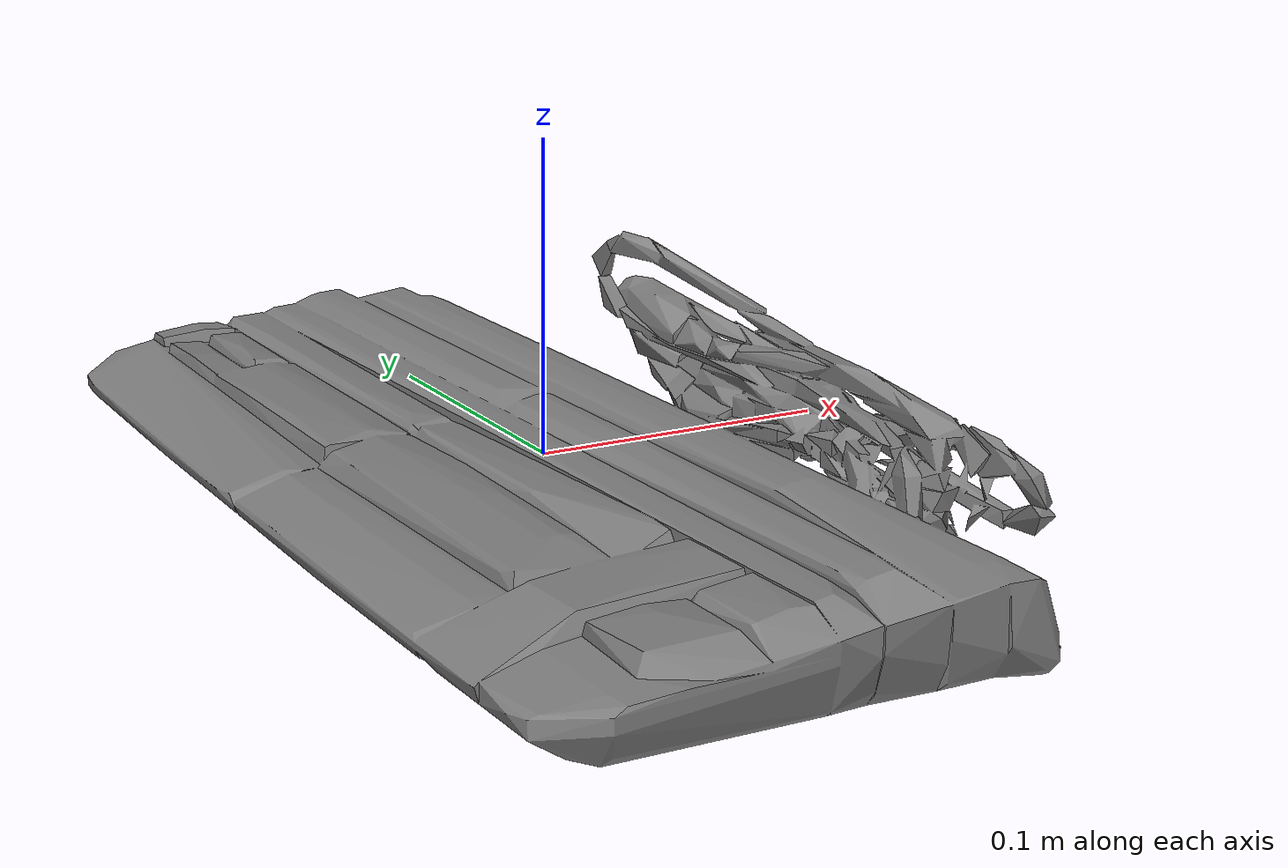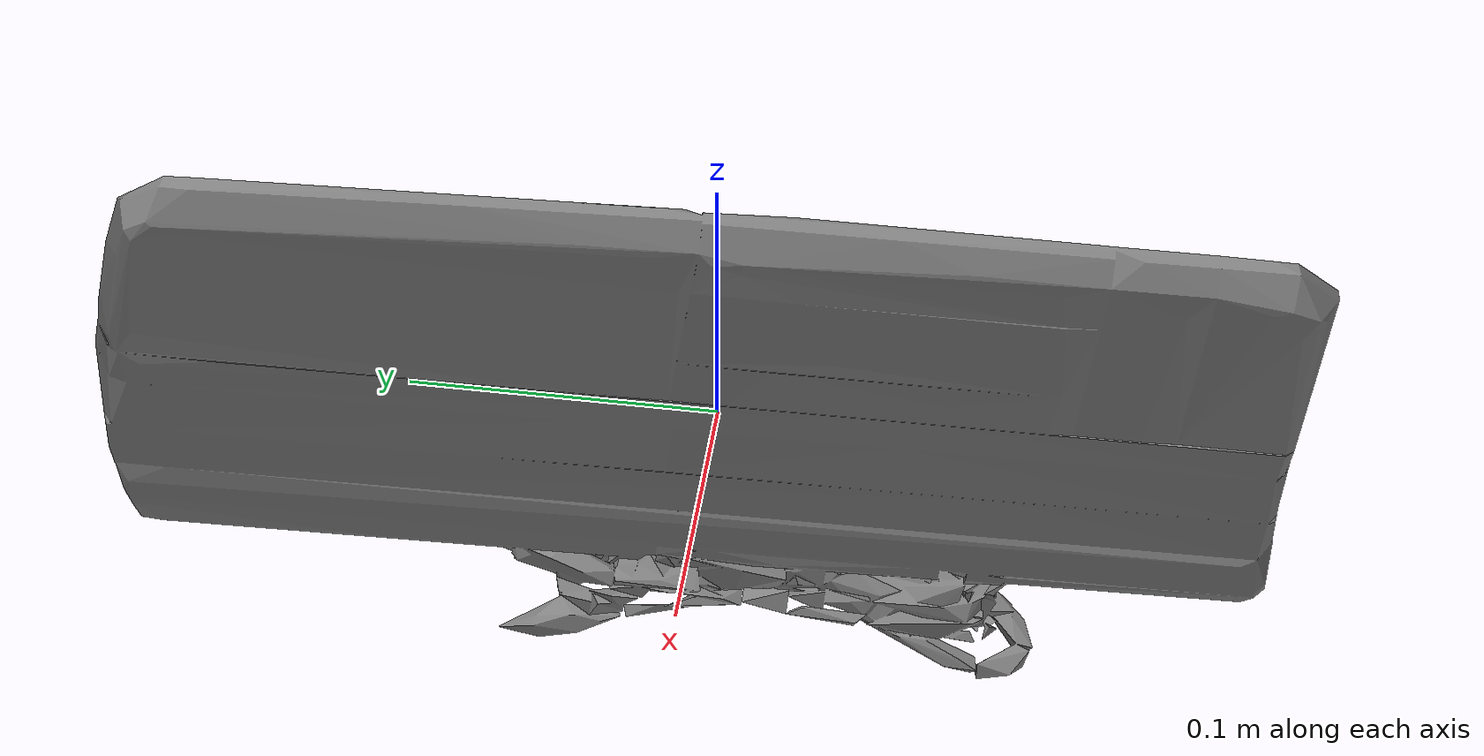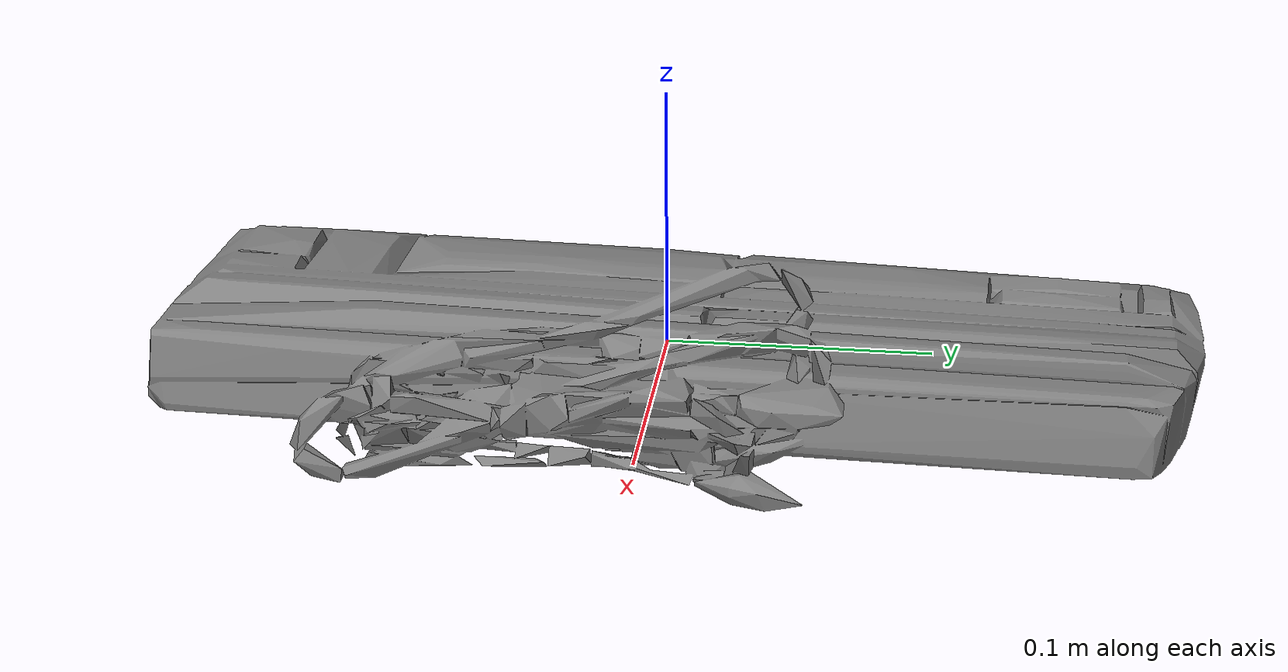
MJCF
<mujoco model="keyboard_Razer_BlackWidow_Stealth_2014_Keyboard_07VFzIVabgh_M">
  <default>
    <default class="visual">
      <geom group="2" type="mesh" contype="0" conaffinity="0" />
    </default>
    <default class="collision">
      <geom group="3" type="mesh" />
    </default>
  </default>
  <asset>
    <mesh file="keyboard_Razer_BlackWidow_Stealth_2014_Keyboard_07VFzIVabgh_M.stl" />
    <mesh file="keyboard_Razer_BlackWidow_Stealth_2014_Keyboard_07VFzIVabgh_M_collision_0.stl" />
    <mesh file="keyboard_Razer_BlackWidow_Stealth_2014_Keyboard_07VFzIVabgh_M_collision_1.stl" />
    <mesh file="keyboard_Razer_BlackWidow_Stealth_2014_Keyboard_07VFzIVabgh_M_collision_2.stl" />
    <mesh file="keyboard_Razer_BlackWidow_Stealth_2014_Keyboard_07VFzIVabgh_M_collision_3.stl" />
    <mesh file="keyboard_Razer_BlackWidow_Stealth_2014_Keyboard_07VFzIVabgh_M_collision_4.stl" />
    <mesh file="keyboard_Razer_BlackWidow_Stealth_2014_Keyboard_07VFzIVabgh_M_collision_5.stl" />
    <mesh file="keyboard_Razer_BlackWidow_Stealth_2014_Keyboard_07VFzIVabgh_M_collision_6.stl" />
    <mesh file="keyboard_Razer_BlackWidow_Stealth_2014_Keyboard_07VFzIVabgh_M_collision_7.stl" />
    <mesh file="keyboard_Razer_BlackWidow_Stealth_2014_Keyboard_07VFzIVabgh_M_collision_8.stl" />
    <mesh file="keyboard_Razer_BlackWidow_Stealth_2014_Keyboard_07VFzIVabgh_M_collision_9.stl" />
    <mesh file="keyboard_Razer_BlackWidow_Stealth_2014_Keyboard_07VFzIVabgh_M_collision_10.stl" />
    <mesh file="keyboard_Razer_BlackWidow_Stealth_2014_Keyboard_07VFzIVabgh_M_collision_11.stl" />
    <mesh file="keyboard_Razer_BlackWidow_Stealth_2014_Keyboard_07VFzIVabgh_M_collision_12.stl" />
    <mesh file="keyboard_Razer_BlackWidow_Stealth_2014_Keyboard_07VFzIVabgh_M_collision_13.stl" />
    <mesh file="keyboard_Razer_BlackWidow_Stealth_2014_Keyboard_07VFzIVabgh_M_collision_14.stl" />
    <mesh file="keyboard_Razer_BlackWidow_Stealth_2014_Keyboard_07VFzIVabgh_M_collision_15.stl" />
  </asset>
  <worldbody>
    <body name="keyboard_Razer_BlackWidow_Stealth_2014_Keyboard_07VFzIVabgh_M">
      <geom mesh="keyboard_Razer_BlackWidow_Stealth_2014_Keyboard_07VFzIVabgh_M" class="visual" />
      <geom mesh="keyboard_Razer_BlackWidow_Stealth_2014_Keyboard_07VFzIVabgh_M_collision_0" class="collision" />
      <geom mesh="keyboard_Razer_BlackWidow_Stealth_2014_Keyboard_07VFzIVabgh_M_collision_1" class="collision" />
      <geom mesh="keyboard_Razer_BlackWidow_Stealth_2014_Keyboard_07VFzIVabgh_M_collision_2" class="collision" />
      <geom mesh="keyboard_Razer_BlackWidow_Stealth_2014_Keyboard_07VFzIVabgh_M_collision_3" class="collision" />
      <geom mesh="keyboard_Razer_BlackWidow_Stealth_2014_Keyboard_07VFzIVabgh_M_collision_4" class="collision" />
      <geom mesh="keyboard_Razer_BlackWidow_Stealth_2014_Keyboard_07VFzIVabgh_M_collision_5" class="collision" />
      <geom mesh="keyboard_Razer_BlackWidow_Stealth_2014_Keyboard_07VFzIVabgh_M_collision_6" class="collision" />
      <geom mesh="keyboard_Razer_BlackWidow_Stealth_2014_Keyboard_07VFzIVabgh_M_collision_7" class="collision" />
      <geom mesh="keyboard_Razer_BlackWidow_Stealth_2014_Keyboard_07VFzIVabgh_M_collision_8" class="collision" />
      <geom mesh="keyboard_Razer_BlackWidow_Stealth_2014_Keyboard_07VFzIVabgh_M_collision_9" class="collision" />
      <geom mesh="keyboard_Razer_BlackWidow_Stealth_2014_Keyboard_07VFzIVabgh_M_collision_10" class="collision" />
      <geom mesh="keyboard_Razer_BlackWidow_Stealth_2014_Keyboard_07VFzIVabgh_M_collision_11" class="collision" />
      <geom mesh="keyboard_Razer_BlackWidow_Stealth_2014_Keyboard_07VFzIVabgh_M_collision_12" class="collision" />
      <geom mesh="keyboard_Razer_BlackWidow_Stealth_2014_Keyboard_07VFzIVabgh_M_collision_13" class="collision" />
      <geom mesh="keyboard_Razer_BlackWidow_Stealth_2014_Keyboard_07VFzIVabgh_M_collision_14" class="collision" />
      <geom mesh="keyboard_Razer_BlackWidow_Stealth_2014_Keyboard_07VFzIVabgh_M_collision_15" class="collision" />
    </body>
  </worldbody>
</mujoco>
